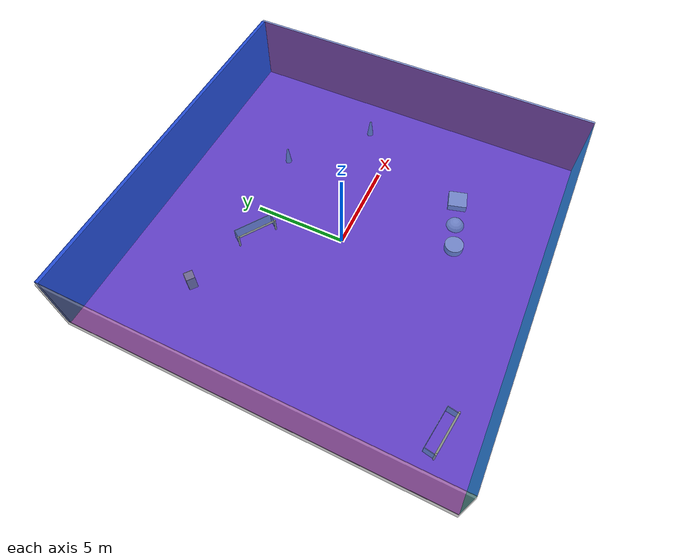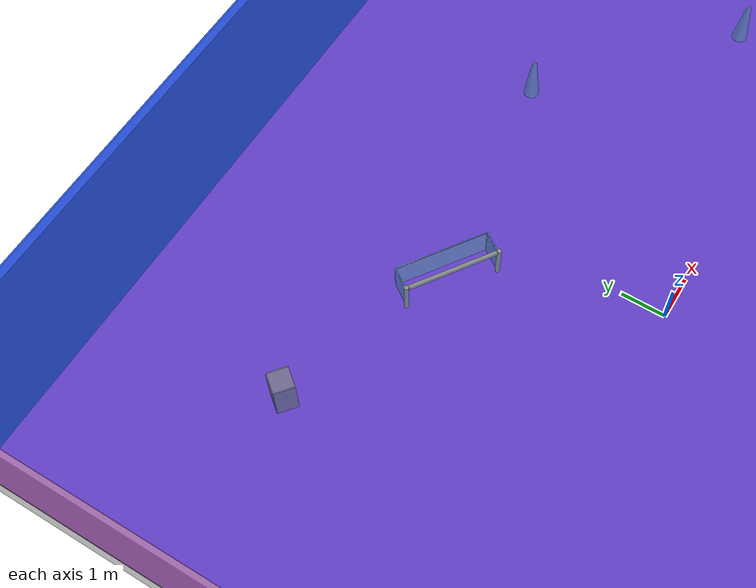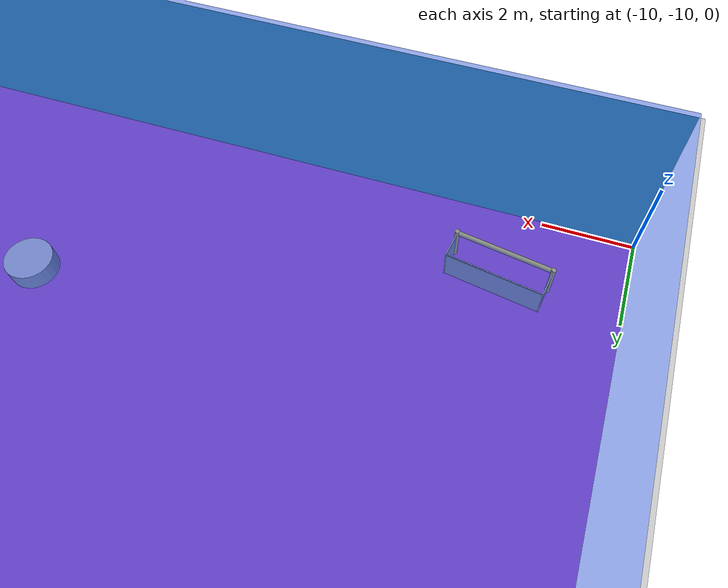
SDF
<sdf version="1.4">
 <world name="default">
  <physics type="ode">
   <max_step_size>0.001</max_step_size>
   <real_time_factor>1</real_time_factor>
   <real_time_update_rate>1000</real_time_update_rate>
   <gravity>0 0 -9.8</gravity>
  </physics>
  <scene><ambient>0.4 0.4 0.4 1</ambient><background>0.7 0.7 0.7 1</background><shadows>1</shadows></scene>
  <model name="Surrounding">
   <static>1</static>
   <link name="Ceiling">
    <collision name="Ceiling_Collision"><geometry><box><size>20 20 0.1</size></box></geometry></collision>
    <visual name="Ceiling_Visual">
     <geometry><box><size>20 20 0.1</size></box></geometry>
     <material>
      <script><uri>file://media/materials/scripts/gazebo.material</uri><name>Gazebo/BlueTransparent</name></script>
     </material>
    </visual>
    <pose>0 0 4.05 0 0 0</pose>
   </link>
   <link name="Wall_South">
    <collision name="Wall_South_Collision">
     <geometry><box><size>20 0 4</size></box></geometry>
     <pose>0 0 2 0 -0 0</pose>
    </collision>
    <visual name="Wall_South_Visual">
     <pose>0 0 2 0 -0 0</pose>
     <geometry><box><size>20 0 4</size></box></geometry>
     <material>
      <script><uri>file://media/materials/scripts/gazebo.material</uri><name>Gazebo/Turquoise</name></script>
     </material>
    </visual>
    <velocity_decay><linear>0</linear><angular>0</angular></velocity_decay>
    <pose>0 -10 0 0 -0 0</pose>
   </link>
   <link name="Wall_East">
    <collision name="Wall_21_Collision">
     <geometry><box><size>20 0 4</size></box></geometry>
     <pose>0 0 2 0 -0 0</pose>
    </collision>
    <visual name="Wall_21_Visual">
     <pose>0 0 2 0 -0 0</pose>
     <geometry><box><size>20 0 4</size></box></geometry>
     <material>
      <script><uri>file://media/materials/scripts/gazebo.material</uri><name>Gazebo/RedBright</name></script>
     </material>
    </visual>
    <velocity_decay><linear>0</linear><angular>0</angular></velocity_decay>
    <pose>10 0 0 0 -0 1.5708</pose>
   </link>
   <link name="Wall_North">
    <collision name="Wall_22_Collision">
     <geometry><box><size>20 0.2 4</size></box></geometry>
     <pose>0 0 2 0 -0 0</pose>
    </collision>
    <visual name="Wall_22_Visual">
     <pose>0 0 2 0 -0 0</pose>
     <geometry><box><size>20 0.2 4</size></box></geometry>
     <material>
      <script><uri>file://media/materials/scripts/gazebo.material</uri><name>Gazebo/BlueGlow</name></script>
     </material>
    </visual>
    <velocity_decay><linear>0</linear><angular>0</angular></velocity_decay>
    <pose>0 10 0 0 -0 0</pose>
   </link>
   <link name="Wall_West">
    <collision name="Wall_23_Collision">
     <geometry><box><size>20 0.2 4</size></box></geometry>
     <pose>0 0 2 0 -0 0</pose>
    </collision>
    <visual name="Wall_23_Visual">
     <pose>0 0 2 0 -0 0</pose>
     <geometry><box><size>20 0.2 4</size></box></geometry>
     <material>
      <script><uri>file://media/materials/scripts/gazebo.material</uri><name>Gazebo/GreyTransparent</name></script>
     </material>
    </visual>
    <velocity_decay><linear>0</linear><angular>0</angular></velocity_decay>
    <pose>-10 0 0 0 0 -1.5708</pose>
   </link>
   <link name="Ground_link">
    <collision name="collision">
     <pose>0 0 .05 0 -0 0</pose>
     <geometry><box><size>20 20 0.1</size></box></geometry>
    </collision>
    <visual name="visual">
     <pose>0 0 .05 0 -0 0</pose>
     <geometry><box><size>20 20 0.1</size></box></geometry>
     <material>
      <script><uri>file://media/materials/scripts/gazebo.material</uri><name>Gazebo/PurpleGlow</name></script>
     </material>
    </visual>
   </link>
   <static>1</static>
  </model>
  <spherical_coordinates>
   <surface_model>EARTH_WGS84</surface_model>
   <latitude_deg>0</latitude_deg>
   <longitude_deg>0</longitude_deg>
   <elevation>0</elevation>
   <heading_deg>0</heading_deg>
  </spherical_coordinates>
  <light name="lightball_0" type="diffuse">
   <diffuse>0.8 0.8 0.8 1</diffuse>
   <specular>0.2 0.2 0.2 1</specular>
   <attenuation>
    <range>100</range>
    <constant>0.7</constant>
    <linear>0.01</linear>
    <quadratic>0.001</quadratic>
   </attenuation>
   <direction>-0.5 0.1 -0.9</direction>
   <pose>3.40181655822 -0.485464071455 2.59949963491 0 0 0</pose>
  </light>
  <light name="lightball_1" type="diffuse">
   <diffuse>0.8 0.8 0.8 1</diffuse>
   <specular>0.2 0.2 0.2 1</specular>
   <attenuation>
    <range>100</range>
    <constant>0.7</constant>
    <linear>0.01</linear>
    <quadratic>0.001</quadratic>
   </attenuation>
   <direction>-0.5 0.1 -0.9</direction>
   <pose>6.35595226503 -7.90764791558 0.679185275815 0 0 0</pose>
  </light>
  <light name="lightball_2" type="diffuse">
   <diffuse>0.8 0.8 0.8 1</diffuse>
   <specular>0.2 0.2 0.2 1</specular>
   <attenuation>
    <range>100</range>
    <constant>0.7</constant>
    <linear>0.01</linear>
    <quadratic>0.001</quadratic>
   </attenuation>
   <direction>-0.5 0.1 -0.9</direction>
   <pose>3.31280795524 8.71536054322 1.17156326177 0 0 0</pose>
  </light>
  <light name="lightball_3" type="diffuse">
   <diffuse>0.8 0.8 0.8 1</diffuse>
   <specular>0.2 0.2 0.2 1</specular>
   <attenuation>
    <range>100</range>
    <constant>0.7</constant>
    <linear>0.01</linear>
    <quadratic>0.001</quadratic>
   </attenuation>
   <direction>-0.5 0.1 -0.9</direction>
   <pose>-6.49772051958 -8.48047996781 3.58831712464 0 0 0</pose>
  </light>
  <light name="lightball_4" type="diffuse">
   <diffuse>0.8 0.8 0.8 1</diffuse>
   <specular>0.2 0.2 0.2 1</specular>
   <attenuation>
    <range>100</range>
    <constant>0.7</constant>
    <linear>0.01</linear>
    <quadratic>0.001</quadratic>
   </attenuation>
   <direction>-0.5 0.1 -0.9</direction>
   <pose>-8.83811756918 6.10319065902 2.41759220403 0 0 0</pose>
  </light>
  <light name="lightball_5" type="diffuse">
   <diffuse>0.8 0.8 0.8 1</diffuse>
   <specular>0.2 0.2 0.2 1</specular>
   <attenuation>
    <range>100</range>
    <constant>0.7</constant>
    <linear>0.01</linear>
    <quadratic>0.001</quadratic>
   </attenuation>
   <direction>-0.5 0.1 -0.9</direction>
   <pose>7.12164594419 7.89327763387 2.48527865113 0 0 0</pose>
  </light>
  <light name="lightball_6" type="diffuse">
   <diffuse>0.8 0.8 0.8 1</diffuse>
   <specular>0.2 0.2 0.2 1</specular>
   <attenuation>
    <range>100</range>
    <constant>0.7</constant>
    <linear>0.01</linear>
    <quadratic>0.001</quadratic>
   </attenuation>
   <direction>-0.5 0.1 -0.9</direction>
   <pose>-4.89292871973 -7.6157058512 2.46428591546 0 0 0</pose>
  </light>
  <light name="lightball_7" type="diffuse">
   <diffuse>0.8 0.8 0.8 1</diffuse>
   <specular>0.2 0.2 0.2 1</specular>
   <attenuation>
    <range>100</range>
    <constant>0.7</constant>
    <linear>0.01</linear>
    <quadratic>0.001</quadratic>
   </attenuation>
   <direction>-0.5 0.1 -0.9</direction>
   <pose>8.0945883107 -1.24420365933 2.71386310474 0 0 0</pose>
  </light>
  <include>
   <uri>model://robocup_3Dsim_goal</uri>
   <pose>-7.37595351096 -8.47002864505 0 0 0 1.41382347591</pose>
  </include>
  <include><uri>model://cabinet</uri><pose>-5.68855020428 5.69029974983 0 0 0 2.46612298828</pose></include>
  <include>
   <uri>model://robocup_3Dsim_goal</uri>
   <pose>-1.76319796819 4.11146231958 0 0 0 0.967073632159</pose>
  </include>
  <include>
   <uri>model://textured_shapes</uri>
   <pose>3.47053524698 -5.16000104475 0 0 0 1.83852934883</pose>
  </include>
  <include>
   <uri>model://construction_cone</uri>
   <pose>3.66243957787 5.16895326374 0 0 0 2.9867094459</pose>
  </include>
  <include>
   <uri>model://construction_cone</uri>
   <pose>7.67027690734 1.71958572235 0 0 0 3.10822666172</pose>
  </include>
 </world>
</sdf>

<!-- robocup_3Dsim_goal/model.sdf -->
<sdf version="1.5">
  <model name="robocup_3d_goal">
    <static>true</static>
    <link name="left_post">
      <pose>0 1.05 0.45 0 0 0</pose>
      <collision name="collision">
        <geometry>
          <cylinder>
            <radius>0.05</radius>
            <length>0.9</length>
          </cylinder>
        </geometry>
      </collision>
      <visual name="visual">
        <geometry>
          <cylinder>
            <radius>0.05</radius>
            <length>0.9</length>
          </cylinder>
        </geometry>
        <material>
          <script>
            <uri>file://media/materials/scripts/gazebo.material</uri>
            <name>Gazebo/ZincYellow</name>
          </script>
        </material>
      </visual>
    </link>
    <link name="left_support_horiz_lower">
      <pose>0.30 1.05 0.01 0 0 0</pose>
      <collision name="collision">
        <geometry>
          <box>
            <size>0.50 0.02 0.02</size>
          </box>
        </geometry>
      </collision>
      <visual name="visual">
        <geometry>
          <box>
            <size>0.50 0.02 0.02</size>
          </box>
        </geometry>
        <material>
          <script>
            <uri>file://media/materials/scripts/gazebo.material</uri>
            <name>Gazebo/White</name>
          </script>
        </material>
      </visual>
    </link>
    <link name="left_support_horiz_upper">
      <pose>0.30 1.05 0.79 0 0 0</pose>
      <collision name="collision">
        <geometry>
          <box>
            <size>0.50 0.02 0.02</size>
          </box>
        </geometry>
      </collision>
      <visual name="visual">
        <geometry>
          <box>
            <size>0.50 0.02 0.02</size>
          </box>
        </geometry>
        <material>
          <script>
            <uri>file://media/materials/scripts/gazebo.material</uri>
            <name>Gazebo/White</name>
          </script>
        </material>
      </visual>
    </link>
    <link name="left_support_vertical">
      <pose>0.56 1.05 0.4 0 1.5708 0</pose>
      <collision name="collision">
        <geometry>
          <box>
            <size>0.80 0.02 0.02</size>
          </box>
        </geometry>
      </collision>
      <visual name="visual">
        <geometry>
          <box>
            <size>0.80 0.02 0.02</size>
          </box>
        </geometry>
        <material>
          <script>
            <uri>file://media/materials/scripts/gazebo.material</uri>
            <name>Gazebo/White</name>
          </script>
        </material>
      </visual>
    </link>
    <link name="right_support_horiz_lower">
      <pose>0.30 -1.05 0.01 0 0 0</pose>
      <collision name="collision">
        <geometry>
          <box>
            <size>0.50 0.02 0.02</size>
          </box>
        </geometry>
      </collision>
      <visual name="visual">
        <geometry>
          <box>
            <size>0.50 0.02 0.02</size>
          </box>
        </geometry>
        <material>
          <script>
            <uri>file://media/materials/scripts/gazebo.material</uri>
            <name>Gazebo/White</name>
          </script>
        </material>
      </visual>
    </link>
    <link name="right_support_horiz_upper">
      <pose>0.30 -1.05 0.79 0 0 0</pose>
      <collision name="collision">
        <geometry>
          <box>
            <size>0.50 0.02 0.02</size>
          </box>
        </geometry>
      </collision>
      <visual name="visual">
        <geometry>
          <box>
            <size>0.50 0.02 0.02</size>
          </box>
        </geometry>
        <material>
          <script>
            <uri>file://media/materials/scripts/gazebo.material</uri>
            <name>Gazebo/White</name>
          </script>
        </material>
      </visual>
    </link>
    <link name="right_support_vertical">
      <pose>0.56 -1.05 0.4 0 1.5708 0</pose>
      <collision name="collision">
        <geometry>
          <box>
            <size>0.80 0.02 0.02</size>
          </box>
        </geometry>
      </collision>
      <visual name="visual">
        <geometry>
          <box>
            <size>0.80 0.02 0.02</size>
          </box>
        </geometry>
        <material>
          <script>
            <uri>file://media/materials/scripts/gazebo.material</uri>
            <name>Gazebo/White</name>
          </script>
        </material>
      </visual>
    </link>
    <link name="center_support_horiz_lower">
      <pose>0.56 0 0.01 0 1.5708 0</pose>
      <collision name="collision">
        <geometry>
          <box>
            <size>0.02 2.08 0.02</size>
          </box>
        </geometry>
      </collision>
      <visual name="visual">
        <geometry>
          <box>
            <size>0.02 2.08 0.02</size>
          </box>
        </geometry>
        <material>
          <script>
            <uri>file://media/materials/scripts/gazebo.material</uri>
            <name>Gazebo/White</name>
          </script>
        </material>
      </visual>
    </link>
    <link name="center_support_horiz_upper">
      <pose>0.56 0 0.79 0 1.5708 0</pose>
      <collision name="collision">
        <geometry>
          <box>
            <size>0.02 2.08 0.02</size>
          </box>
        </geometry>
      </collision>
      <visual name="visual">
        <geometry>
          <box>
            <size>0.02 2.08 0.02</size>
          </box>
        </geometry>
        <material>
          <script>
            <uri>file://media/materials/scripts/gazebo.material</uri>
            <name>Gazebo/White</name>
          </script>
        </material>
      </visual>
    </link>
    <link name="right_post">
      <pose>0 -1.05 0.45 0 0 0</pose>
      <collision name="collision">
        <geometry>
          <cylinder>
            <radius>0.05</radius>
            <length>0.9</length>
          </cylinder>
        </geometry>
      </collision>
      <visual name="visual">
        <geometry>
          <cylinder>
            <radius>0.05</radius>
            <length>0.9</length>
          </cylinder>
        </geometry>
        <material>
          <script>
            <uri>file://media/materials/scripts/gazebo.material</uri>
            <name>Gazebo/ZincYellow</name>
          </script>
        </material>
      </visual>
    </link>
    <link name="crossbar">
      <pose>0 0 0.85 1.57 1.57 0</pose>
      <collision name="collision">
        <geometry>
          <cylinder>
            <radius>0.05</radius>
            <length>2.0</length>
          </cylinder>
        </geometry>
      </collision>
      <visual name="visual">
        <geometry>
          <cylinder>
            <radius>0.05</radius>
            <length>2.0</length>
          </cylinder>
        </geometry>
        <material>
          <script>
            <uri>file://media/materials/scripts/gazebo.material</uri>
            <name>Gazebo/ZincYellow</name>
          </script>
        </material>
      </visual>
    </link>
    <link name="center_net">
      <pose>0.56 0 0.40 0 0 0</pose>
      <collision name="collision">
        <geometry>
          <box>
            <size>0.01 2.1 0.80</size>
          </box>
        </geometry>
      </collision>
      <visual name="visual">
        <geometry>
          <box>
            <size>0.01 2.1 0.80</size>
          </box>
        </geometry>
        <material>
          <script>
            <uri>model://../model_source/models/robocup09_spl_field/materials/scripts/</uri>
            <uri>model://../model_source/models/robocup09_spl_field/materials/textures/</uri>
            <name>RoboCup/Net</name>
          </script>
        </material>
      </visual>
    </link>
    <link name="left_net">
      <pose>0.30 1.05 0.40 0 0 0</pose>
      <collision name="collision">
        <geometry>
          <box>
            <size>0.50 0.01 0.76</size>
          </box>
        </geometry>
      </collision>
      <visual name="visual">
        <geometry>
          <box>
            <size>0.50 0.01 0.76</size>
          </box>
        </geometry>
        <material>
          <script>
            <uri>model://../model_source/models/robocup09_spl_field/materials/scripts/</uri>
            <uri>model://../model_source/models/robocup09_spl_field/materials/textures/</uri>
            <name>RoboCup/Net</name>
          </script>
        </material>
      </visual>
    </link>
    <link name="right_net">
      <pose>0.30 -1.05 0.40 0 0 0</pose>
      <collision name="collision">
        <geometry>
          <box>
            <size>0.50 0.01 0.76</size>
          </box>
        </geometry>
      </collision>
      <visual name="visual">
        <geometry>
          <box>
            <size>0.50 0.01 0.76</size>
          </box>
        </geometry>
        <material>
          <script>
            <uri>model://../model_source/models/robocup09_spl_field/materials/scripts/</uri>
            <uri>model://../model_source/models/robocup09_spl_field/materials/textures/</uri>
            <name>RoboCup/Net</name>
          </script>
        </material>
      </visual>
    </link>
  </model>
</sdf>

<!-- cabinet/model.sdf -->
<sdf version="1.5">
  <model name="cabinet">
    <static>true</static>
    <link name="cabinet_bottom_plate">
      <inertial>
        <pose>0 0 -1 0 0 0</pose>
        <inertia>
          <ixx>2.050000</ixx>
          <ixy>0</ixy>
          <ixz>0</ixz>
          <iyy>2.050000</iyy>
          <iyz>0</iyz>
          <izz>2.050000</izz>
        </inertia>
        <mass>25.000000</mass>
      </inertial>
      <collision name="cabinet_bottom_plate_geom">
        <pose>0 0 0.010000 0 0 0</pose>
        <geometry>
          <box>
            <size>0.450000 0.450000 0.020000</size>
          </box>
        </geometry>
      </collision>
      <visual name="cabinet_bottom_plate_geom_visual">
        <pose>0 0 0.010000 0 0 0</pose>
        <geometry>
          <box>
            <size>0.450000 0.450000 0.020000</size>
          </box>
        </geometry>
        <material>
          <script>
            <uri>model://media/materials/scripts/gazebo.material</uri>
            <name>Gazebo/Wood</name>
          </script>
        </material>
      </visual>
      <collision name="cabinet_bottom_plate_geom_cabinet_back_plate">
        <pose>0.235000 0 0.510000 0 0 0</pose>
        <geometry>
          <box>
            <size>0.020000 0.450000 1.020000</size>
          </box>
        </geometry>
      </collision>
      <visual name="cabinet_bottom_plate_geom_cabinet_back_plate_visual">
        <pose>0.235000 0 0.510000 0 0 0</pose>
        <geometry>
          <box>
            <size>0.020000 0.450000 1.020000</size>
          </box>
        </geometry>
        <material>
          <script>
            <uri>model://media/materials/scripts/gazebo.material</uri>
            <name>Gazebo/Wood</name>
          </script>
        </material>
      </visual>
      <collision name="cabinet_bottom_plate_geom_cabinet_left_plate">
        <pose>0 0.235000 0.510000 0 0 0</pose>
        <geometry>
          <box>
            <size>0.450000 0.020000 1.020000</size>
          </box>
        </geometry>
      </collision>
      <visual name="cabinet_bottom_plate_geom_cabinet_left_plate_visual">
        <pose>0 0.235000 0.510000 0 0 0</pose>
        <geometry>
          <box>
            <size>0.450000 0.020000 1.020000</size>
          </box>
        </geometry>
        <material>
          <script>
            <uri>model://media/materials/scripts/gazebo.material</uri>
            <name>Gazebo/Wood</name>
          </script>
        </material>
      </visual>
      <collision name="cabinet_bottom_plate_geom_cabinet_middle_plate">
        <pose>0 0 0.510000 0 0 0</pose>
        <geometry>
          <box>
            <size>0.450000 0.450000 0.020000</size>
          </box>
        </geometry>
      </collision>
      <visual name="cabinet_bottom_plate_geom_cabinet_middle_plate_visual">
        <pose>0 0 0.510000 0 0 0</pose>
        <geometry>
          <box>
            <size>0.450000 0.450000 0.020000</size>
          </box>
        </geometry>
        <material>
          <script>
            <uri>model://media/materials/scripts/gazebo.material</uri>
            <name>Gazebo/Wood</name>
          </script>
        </material>
      </visual>
      <collision name="cabinet_bottom_plate_geom_cabinet_right_plate">
        <pose>0 -0.235000 0.510000 0 0 0</pose>
        <geometry>
          <box>
            <size>0.450000 0.020000 1.020000</size>
          </box>
        </geometry>
      </collision>
      <visual name="cabinet_bottom_plate_geom_cabinet_right_plate_visual">
        <pose>0 -0.235000 0.510000 0 0 0</pose>
        <geometry>
          <box>
            <size>0.450000 0.020000 1.020000</size>
          </box>
        </geometry>
        <material>
          <script>
            <uri>model://media/materials/scripts/gazebo.material</uri>
            <name>Gazebo/Wood</name>
          </script>
        </material>
      </visual>
      <collision name="cabinet_bottom_plate_geom_cabinet_top_plate">
        <pose>0 0 1.010000 0 0 0</pose>
        <geometry>
          <box>
            <size>0.450000 0.450000 0.020000</size>
          </box>
        </geometry>
      </collision>
      <visual name="cabinet_bottom_plate_geom_cabinet_top_plate_visual">
        <pose>0 0 1.010000 0 0 0</pose>
        <geometry>
          <box>
            <size>0.450000 0.450000 0.020000</size>
          </box>
        </geometry>
        <material>
          <script>
            <uri>model://media/materials/scripts/gazebo.material</uri>
            <name>Gazebo/Wood</name>
          </script>
        </material>
      </visual>
    </link>
  </model>
</sdf>

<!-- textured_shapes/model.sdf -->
<sdf version="1.6">
  <model name="textured_shapes">
    <pose>0 0 0.5 0 0 0</pose>
    <link name="box">
      <pose>0 -1.5 0 0 0 0</pose>
      <collision name="collision">
        <geometry>
          <box>
            <size>1 1 1</size>
          </box>
        </geometry>
      </collision>
      <visual name="visual">
        <geometry>
          <box>
            <size>1 1 1</size>
          </box>
        </geometry>
        <material>
          <script>
            <uri>model://../model_source/models/textured_shapes/materials/scripts</uri>
            <uri>model://../model_source/models/textured_shapes/materials/textures</uri>
            <name>TexturedShape/Squares</name>
          </script>
        </material>
      </visual>
    </link>
    <link name="sphere">
      <collision name="collision">
        <geometry>
          <sphere>
            <radius>0.5</radius>
          </sphere>
        </geometry>
      </collision>
      <visual name="visual">
        <geometry>
          <sphere>
            <radius>0.5</radius>
          </sphere>
        </geometry>
        <material>
          <script>
            <uri>model://../model_source/models/textured_shapes/materials/scripts</uri>
            <uri>model://../model_source/models/textured_shapes/materials/textures</uri>
            <name>TexturedShape/Squares</name>
          </script>
        </material>
      </visual>
    </link>
    <link name="cylinder">
      <pose>0 1.5 0 0 0 0</pose>
      <collision name="collision">
        <geometry>
          <cylinder>
            <radius>0.5</radius>
            <length>1</length>
          </cylinder>
        </geometry>
      </collision>
      <visual name="visual">
        <geometry>
          <cylinder>
            <radius>0.5</radius>
            <length>1</length>
          </cylinder>
        </geometry>
        <material>
          <script>
            <uri>model://../model_source/models/textured_shapes/materials/scripts</uri>
            <uri>model://../model_source/models/textured_shapes/materials/textures</uri>
            <name>TexturedShape/Squares</name>
          </script>
        </material>
      </visual>
    </link>
  </model>
</sdf>

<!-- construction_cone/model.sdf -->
<sdf version="1.5">
  <model name="Construction Cone">
    <link name="link">
      <collision name="collision">
        <geometry>
          <mesh>
            <scale>10 10 10</scale>
            <uri>file://isr-testbed/construction_cone/meshes/construction_cone.dae</uri>
          </mesh>
        </geometry>
      </collision>
      <visual name="visual">
        <geometry>
          <mesh>
            <scale>10 10 10</scale>
            <uri>file://isr-testbed/construction_cone/meshes/construction_cone.dae</uri>
          </mesh>
        </geometry>
      </visual>
    </link>
  </model>
</sdf>
